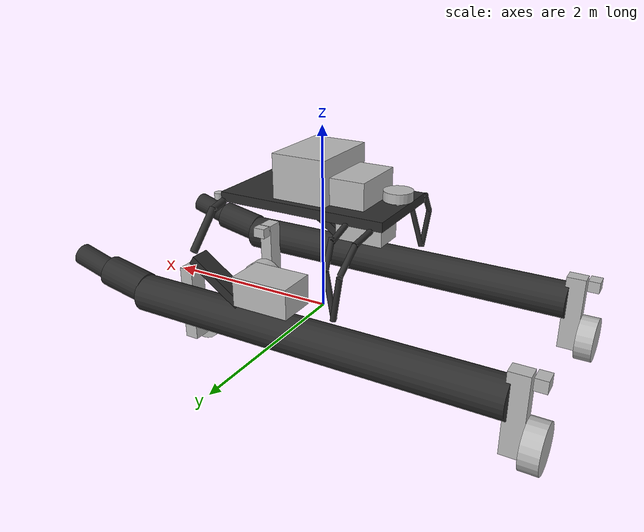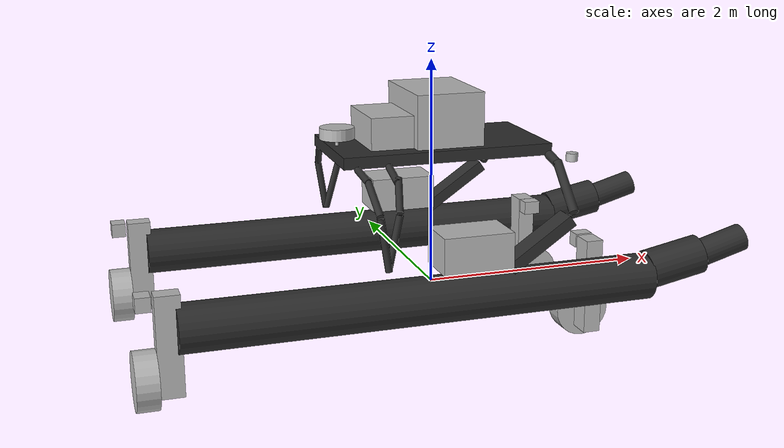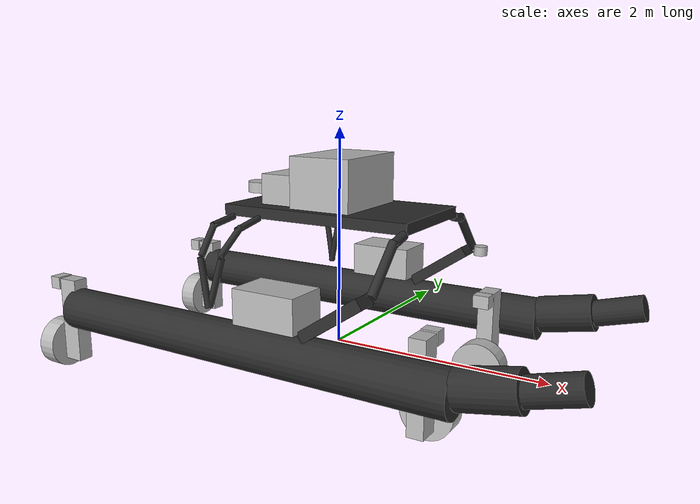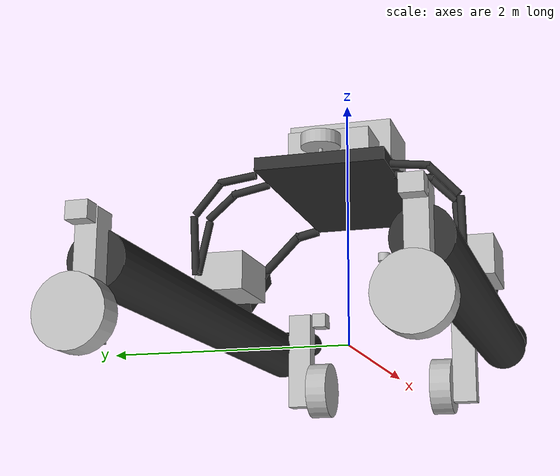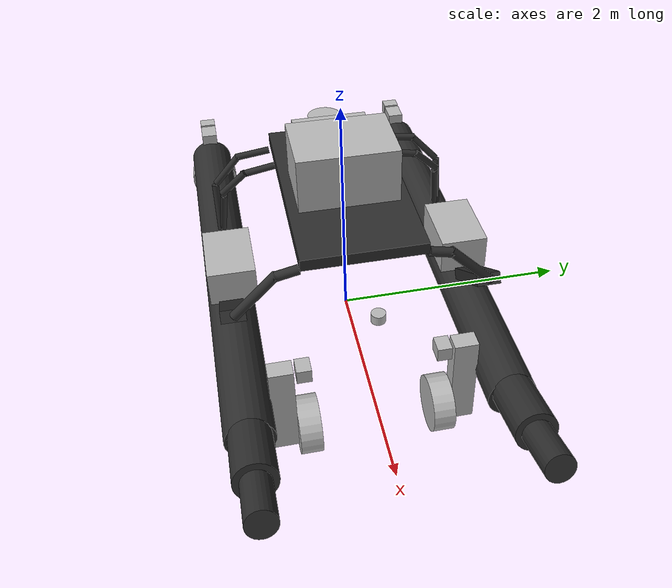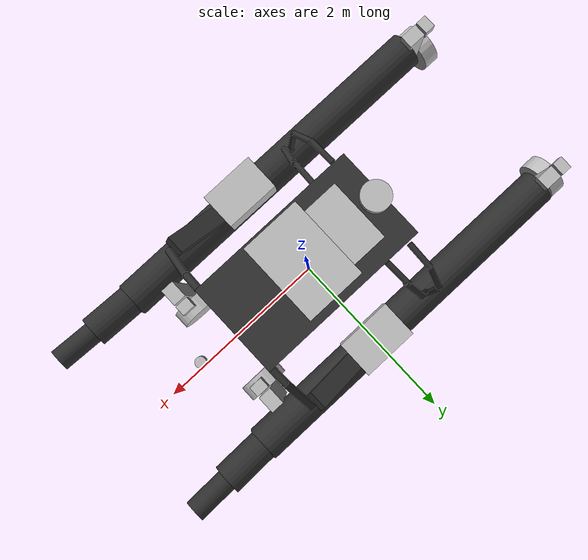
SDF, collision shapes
<?xml version="1.0" ?>
<!-- Basic WAM-V with gazebo plugins for dynamics -->
<sdf version='1.6'>
<model name="wamv_v1">

    <link name="base_link">
        <visual name="base_visual">
          <geometry>
            <mesh>
                <uri>models://wamv_v1/meshes/WAM-V-Base/mesh/WAM-V-Base.stl</uri>
            </mesh>
          </geometry>
          <material>
            <ambient>0.175 0.175 0.175 1.0</ambient>
            <diffuse>0.175 0.175 0.175 1.0</diffuse>
            <specular>0.0 0.0 0.0 1.0</specular>  <!-- Black specular -->
            <shininess>50.0</shininess>
        </material>
        </visual>
        <inertial>
          <mass>180.0</mass>
          <inertia>
            <ixx>120.0</ixx>
            <ixy>0.0</ixy>
            <ixz>0.0</ixz>
            <iyy>393.0</iyy>
            <iyz>0.0</iyz>
            <izz>446.0</izz>
          </inertia>
        </inertial>
        <!-- Main float -->
        <collision name="left_float">
            <pose>-0.4 1.03 0.2 0 1.57 0</pose>
            <geometry>
                <cylinder>
                    <length>4</length>
                    <radius>0.2</radius>
                </cylinder>
            </geometry>
        </collision>
        <collision name="left_mid_float">
            <pose>1.85 1.03 0.3 0 1.38 0</pose>
            <geometry>
                <cylinder>
                    <length>0.5</length>
                    <radius>0.17</radius>
                </cylinder>
            </geometry>
        </collision>

        <collision name="left_front_float">
            <pose>2.3 1.03 0.4 0 1.3 0</pose>
            <geometry>
                <cylinder>
                    <length>0.45</length>
                    <radius>0.12</radius>
                </cylinder>
            </geometry>
        </collision>

        <!-- Front beam -->
        <collision name="front_left_beam_lower">
            <pose>0.9 0.85 1 0.78 0 0</pose>
            <geometry>
                <cylinder>
                    <length>0.5</length>
                    <radius>0.04</radius>
                </cylinder>
            </geometry>
        </collision>

        <collision name="front_left_beam_upper">
            <pose>0.9 0.6 1.18 1.35 0 0</pose>
            <geometry>
                <cylinder>
                    <length>0.2</length>
                    <radius>0.04</radius>
                </cylinder>
            </geometry>
        </collision>

        <!-- Mid beam -->
        <collision name="mid_left_beam_lower">
            <pose>-0.65 0.99 0.7 0.1 0.25 0</pose>
            <geometry>
                <cylinder>
                    <length>0.45</length>
                    <radius>0.03</radius>
                </cylinder>
            </geometry>
        </collision>

        <collision name="mid_left_beam_medium">
            <pose>-0.57 0.87 1.05 0.75 0.25 0</pose>
            <geometry>
                <cylinder>
                    <length>0.32</length>
                    <radius>0.03</radius>
                </cylinder>
            </geometry>
        </collision>

        <collision name="mid_left_beam_upper">
            <pose>-0.55 0.65 1.17 1.35 0.25 0</pose>
            <geometry>
                <cylinder>
                    <length>0.3</length>
                    <radius>0.03</radius>
                </cylinder>
            </geometry>
        </collision>

        <!-- Rear beam -->
        <collision name="rear_left_beam_lower">
            <pose>-0.74 1.03 0.7 0 -0.15 0</pose>
            <geometry>
                <cylinder>
                    <length>0.45</length>
                    <radius>0.03</radius>
                </cylinder>
            </geometry>
        </collision>

        <collision name="rear_left_beam_medium">
            <pose>-0.79 0.91 1.05 0.75 -0.15 0</pose>
            <geometry>
                <cylinder>
                    <length>0.32</length>
                    <radius>0.03</radius>
                </cylinder>
            </geometry>
        </collision>

        <collision name="rear_left_beam_upper">
            <pose>-0.81 0.67 1.18 1.45 -0.15 0</pose>
            <geometry>
                <cylinder>
                    <length>0.3</length>
                    <radius>0.03</radius>
                </cylinder>
            </geometry>
        </collision>

        <!-- Joint -->
        <collision name="left_joint">
            <pose>0.58 1.03 0.6 0 -0.6 0</pose>
            <geometry>
                <box>
                    <size>0.65 0.2 0.1</size>
                </box>
            </geometry>
        </collision>

        <!-- Main float -->
        <collision name="right_float">
            <pose>-0.4 -1.03 0.2 0 1.57 0</pose>
            <geometry>
                <cylinder>
                    <length>4</length>
                    <radius>0.2</radius>
                </cylinder>
            </geometry>
        </collision>

        <collision name="right_mid_float">
            <pose>1.85 -1.03 0.3 0 1.38 0</pose>
            <geometry>
                <cylinder>
                    <length>0.5</length>
                    <radius>0.17</radius>
                </cylinder>
            </geometry>
        </collision>

        <collision name="right_front_float">
            <pose>2.3 -1.03 0.4 0 1.3 0</pose>
            <geometry>
                <cylinder>
                    <length>0.45</length>
                    <radius>0.12</radius>
                </cylinder>
            </geometry>
        </collision>

        <!-- Front beam -->
        <collision name="front_right_beam_lower">
            <pose>0.9 -0.85 1 -0.78 0 0</pose>
            <geometry>
                <cylinder>
                    <length>0.5</length>
                    <radius>0.04</radius>
                </cylinder>
            </geometry>
        </collision>

        <collision name="front_right_beam_upper">
            <pose>0.9 -0.6 1.18 -1.35 0 0</pose>
            <geometry>
                <cylinder>
                    <length>0.2</length>
                    <radius>0.04</radius>
                </cylinder>
            </geometry>
        </collision>

        <!-- Mid beam -->
        <collision name="mid_right_beam_lower">
            <pose>-0.65 -0.99 0.7 -0.1 0.25 0</pose>
            <geometry>
                <cylinder>
                    <length>0.45</length>
                    <radius>0.03</radius>
                </cylinder>
            </geometry>
        </collision>

        <collision name="mid_right_beam_medium">
            <pose>-0.57 -0.87 1.05 -0.75 0.25 0</pose>
            <geometry>
                <cylinder>
                    <length>0.32</length>
                    <radius>0.03</radius>
                </cylinder>
            </geometry>
        </collision>

        <collision name="mid_right_beam_upper">
            <pose>-0.55 -0.65 1.17 -1.35 0.25 0</pose>
            <geometry>
                <cylinder>
                    <length>0.3</length>
                    <radius>0.03</radius>
                </cylinder>
            </geometry>
        </collision>

        <!-- Rear beam -->
        <collision name="rear_right_beam_lower">
            <pose>-0.74 -1.03 0.7 0 -0.15 0</pose>
            <geometry>
                <cylinder>
                    <length>0.45</length>
                    <radius>0.03</radius>
                </cylinder>
            </geometry>
        </collision>

        <collision name="rear_right_beam_medium">
            <pose>-0.79 -0.91 1.05 -0.75 -0.15 0</pose>
            <geometry>
                <cylinder>
                    <length>0.32</length>
                    <radius>0.03</radius>
                </cylinder>
            </geometry>
        </collision>

        <collision name="rear_right_beam_upper">
            <pose>-0.81 -0.67 1.18 -1.45 -0.15 0</pose>
            <geometry>
                <cylinder>
                    <length>0.3</length>
                    <radius>0.03</radius>
                </cylinder>
            </geometry>
        </collision>

        <!-- Joint -->
        <collision name="right_joint">
            <pose>0.58 -1.03 0.6 0 -0.6 0</pose>
            <geometry>
                <box>
                    <size>0.65 0.2 0.1</size>
                </box>
            </geometry>
        </collision>

        <!-- Top base -->
        <collision name="top_base">
            <pose>0 -0 1.25 0 0 0</pose>
            <geometry>
                <box>
                    <size>1.85 1 0.1</size>
                </box>
            </geometry>
        </collision>
      </link>

    <link name="cpu_cases_link">
        <pose>-0.15 0 1.53 0 0 0</pose>
        <visual name="cpu_cases_visual">
            <pose>0.073 0 -1.53 0 0 0</pose>
            <geometry>
                <mesh>
                    <uri>models://wamv_v1/meshes/cpu_cases/mesh/cpu_cases.dae</uri>
                </mesh>
            </geometry>
        </visual>
        <collision name="cpu_case_1_collision">
            <pose>0.185 0 0 0 0 0</pose>
            <geometry>
                <box>
                    <size>0.595 0.83 0.47</size>
                </box>
            </geometry>
        </collision>
        <collision name="cpu_case_2_collision">
            <pose>-0.3 0 -0.092 0 0 0</pose>
            <geometry>
                <box>
                    <size>0.375 0.64 0.28</size>
                </box>
            </geometry>
        </collision>
        <inertial>
            <mass>20</mass>
            <inertia>
                <ixx>1.51633333333333</ixx>
                <ixy>0</ixy>
                <ixz>0</ixz>
                <iyy>1.93633333333333</iyy>
                <iyz>0</iyz>
                <izz>2.71633333333333</izz>
            </inertia>
        </inertial>
    </link>

    <joint name="chasis_cpu_cases_joint" type="fixed">
        <pose>-0.15 0 1.53 0 0 0</pose>
        <parent>base_link</parent>
        <child>cpu_cases_link</child>
    </joint>

    <!-- GPS Sensor -->
    <link name="gps_wamv_link">
        <pose>-0.85 0 1.3 0 0 0</pose>
        <visual name="gps_wamv_visual">
        <geometry>
            <mesh>
            <uri>/models://wamv_v1/meshes/gps/mesh/gps.dae</uri>
            </mesh>
        </geometry>
        </visual>
        <collision name="gps_wamv_collision_base">
        <pose>0 0 0.025 0 0 0</pose>
        <geometry>
            <cylinder>
            <length>0.05</length>
            <radius>0.015</radius>
            </cylinder>
        </geometry>
        </collision>
        <collision name="gps_wamv_collision_antenna">
        <pose>0 0 0.11 0 0 0</pose>
        <geometry>
            <cylinder>
            <length>0.1</length>
            <radius>0.15</radius>
            </cylinder>
        </geometry>
        </collision>
        <inertial>
        <mass>1</mass>
        <inertia>
            <ixx>0.006458</ixx>
            <ixy>0.0</ixy>
            <ixz>0.0</ixz>
            <iyy>0.006458</iyy>
            <iyz>0.0</iyz>
            <izz>0.01125</izz>
        </inertia>
        </inertial>
    </link>
    <!-- IMU Sensor -->
    <link name="imu_link">
        <pose>0.3 -0.2 1.3 0 0 0</pose>
        <visual name="imu_visual">
        <geometry>
            <box>
            <size>0.05 0.025 0.005</size>
            </box>
        </geometry>
        <material>
            <ambient>1.0 0.0 0.0 1.0</ambient>
            <diffuse>1.0 0.0 0.0 1.0</diffuse>
            <specular>1.0 0.0 0.0 1.0</specular>
        </material>
        </visual>
        <inertial>
            <mass>0.1</mass>
            <inertia>
                <ixx>0.0001</ixx>
                <ixy>0.0</ixy>
                <ixz>0.0</ixz>
                <iyy>0.0001</iyy>
                <iyz>0.0</iyz>
                <izz>0.0001</izz>
            </inertia>
        </inertial>
        <sensor name="imu_sensor" type="imu">
            <pose>0 0 0 0 0 0</pose>
            <always_on>1</always_on>
            <update_rate>1000.0</update_rate>
        </sensor>
    </link>

    <!-- Joint Definition -->
    <joint name="imu_joint" type="fixed">
        <axis>
        <xyz>0 0 1</xyz>
        <limit>
            <effort>1000.0</effort>
            <lower>0.0</lower>
            <upper>0.0</upper>
            <velocity>0.0</velocity>
        </limit>
        </axis>
        <pose>0.3 -0.2 1.3 0 0 0</pose>
        <parent>base_link</parent>
        <child>imu_link</child>
    </joint>

    <!-- 3D LiDAR Sensor -->
    <link name="lidar_wamv_link">
        <pose>1.36 0.0 1.04 0 0 0</pose>
        <visual name="lidar_wamv_visual">
        <pose>0 0 -0.035 0 0 0</pose>
        <geometry>
            <mesh>
            <uri>models://wamv_v1/meshes/3d_lidar/mesh/3d_lidar.dae</uri>
            </mesh>
        </geometry>
        </visual>
        <collision name="lidar_wamv_collision">
        <geometry>
            <cylinder>
            <length>0.075</length>
            <radius>0.055</radius>
            </cylinder>
        </geometry>
        </collision>
        <inertial>
        <mass>1</mass>
        <inertia>
            <ixx>0.00109375</ixx>
            <ixy>0</ixy>
            <ixz>0</ixz>
            <iyy>0.00109375</iyy>
            <iyz>0</iyz>
            <izz>0.00125</izz>
        </inertia>
        </inertial>
    </link>
    <!-- Joint Definition -->
    <joint name="base_to_lidar_wamv_joint" type="fixed">
        <pose>1.38 0.0 1.12325 0 0 0</pose>
        <parent>base_link</parent>
        <child>lidar_wamv_link</child>
    </joint>

    <!-- Joint Definition -->
    <joint name="gps_wamv_joint" type="fixed">
        <axis>
        <xyz>0 0 1</xyz>
        <limit>
            <effort>1000.0</effort>
            <lower>0.0</lower>
            <upper>0.0</upper>
            <velocity>0.0</velocity>
        </limit>
        </axis>
        <pose>-0.85 0 1.3 0 0 0</pose>
        <parent>base_link</parent>
        <child>gps_wamv_link</child>
    </joint>

    <!-- GPS Link -->
    <link name="gps_link">
        <pose>0 0 0 0 0 0</pose>
        <visual name="mavlink_wamv_visual">
        <geometry>
            <box>
            <size>0.0005 0.00025 0.005</size>
            </box>
        </geometry>
        </visual>
        <inertial>
            <mass>1.0</mass>
            <inertia>
                <ixx>0.01</ixx>
                <ixy>0.0</ixy>
                <ixz>0.0</ixz>
                <iyy>0.01</iyy>
                <iyz>0.0</iyz>
                <izz>0.02</izz>
            </inertia>
        </inertial>
    </link>

    <joint name="gps_joint" type="revolute">
        <parent>base_link</parent>
        <child>gps_link</child>
        <axis>
        <xyz>0 0 1</xyz>
            <limit>
                <effort>10</effort>
                <lower>-3.141592653589793</lower>
                <upper>3.141592653589793</upper>
                <velocity>0.01</velocity>
            </limit>
        </axis>
        <pose>0 0 0 0 0 0</pose>
    </joint>

    <!-- left_engine_link -->
    <link name="left_engine_link">
        <!-- Visual element for the engine -->
        <pose>-2.3 1.027135 0.318237 0 0 0</pose>
        <visual name="left_engine_visual">
          <geometry>
            <mesh>
              <uri>models://wamv_v1/meshes/engine/mesh/engine.dae</uri>
            </mesh>
          </geometry>
        </visual>

        <!-- Collision elements for the engine -->
        <collision name="left_engine_vertical_axis_collision">
          <pose>-0.16 0 -0.24 0 0 0</pose>  <!-- xyz and rpy combined into pose -->
          <geometry>
            <box>
              <size>0.2 0.15 0.83</size>
            </box>
          </geometry>
        </collision>

        <collision name="left_engine_rear_end_collision">
          <pose>-0.34 0 0.12 0 0 0</pose>  <!-- xyz and rpy combined into pose -->
          <geometry>
            <box>
              <size>0.12 0.15 0.12</size>
            </box>
          </geometry>
        </collision>

        <!-- Inertial properties of the engine link -->
        <inertial>
          <mass>15</mass>
          <inertia>
            <ixx>0.889245</ixx>
            <ixy>0.0</ixy>
            <ixz>0.0</ixz>
            <iyy>0.911125</iyy>
            <iyz>0.0</iyz>
            <izz>0.078125</izz>
          </inertia>
        </inertial>
      </link>

    <!-- Left Propeller Link -->
    <link name="left_propeller_link">
        <pose relative_to='left_engine_link'>-0.27 0 -0.51 0 0 0</pose>
        <visual name="left_propeller_visual">
        <geometry>
            <mesh>
            <uri>models://wamv_v1/meshes/propeller/mesh/propeller.dae</uri>
            </mesh>
        </geometry>
        </visual>
        <collision name="left_propeller_collision">
        <pose>-0.08 0 0 0 1.57 0</pose>
        <geometry>
            <cylinder>
            <length>0.18</length>
            <radius>0.24</radius>
            </cylinder>
        </geometry>
        </collision>
        <inertial>
        <mass>0.5</mass>
        <inertia>
            <ixx>0.008545</ixx>
            <ixy>0.0</ixy>
            <ixz>0.0</ixz>
            <iyy>0.008545</iyy>
            <iyz>0.0</iyz>
            <izz>0.0144</izz>
        </inertia>
        </inertial>
    </link>

    <!-- Left Chasis to Engine Joint -->
    <joint name="left_chasis_engine_joint" type="fixed">
        <axis>
        <xyz>0 0 1</xyz>
        </axis>
        <parent>base_link</parent>
        <child>left_engine_link</child>
    </joint>

    <!-- Left Engine to Propeller Joint -->
    <joint name="left_engine_propeller_joint" type="revolute">
        <axis>
        <xyz>1 0 0</xyz>
        <limit>
            <effort>100</effort>
            <velocity>100</velocity>
        </limit>
        </axis>
        <parent>left_engine_link</parent>
        <child>left_propeller_link</child>
        <dynamics>
            <damping>0.05</damping>
            <friction>0.05</friction>
        </dynamics>
    </joint>

    <!-- Right Engine Link -->
    <link name="right_engine_link">
        <pose>-2.3 -1.027135 0.318237 0 0 0</pose>
        <visual name="right_engine_visual">
        <geometry>
            <mesh>
            <uri>models://wamv_v1/meshes/engine/mesh/engine.dae</uri>
            </mesh>
        </geometry>
        </visual>
        <collision name="right_engine_vertical_axis_collision">
        <pose>-0.16 0 -0.24 0 0 0</pose>
        <geometry>
            <box>
            <size>0.2 0.15 0.83</size>
            </box>
        </geometry>
        </collision>
        <collision name="right_engine_rear_end_collision">
        <pose>-0.34 0 0.12 0 0 0</pose>
        <geometry>
            <box>
            <size>0.12 0.15 0.12</size>
            </box>
        </geometry>
        </collision>
        <inertial>
        <mass>15</mass>
        <inertia>
            <ixx>0.889245</ixx>
            <ixy>0.0</ixy>
            <ixz>0.0</ixz>
            <iyy>0.911125</iyy>
            <iyz>0.0</iyz>
            <izz>0.078125</izz>
        </inertia>
        </inertial>
    </link>

    <!-- Right Propeller Link -->
    <link name="right_propeller_link">
        <pose relative_to='right_engine_link'>-0.27 0 -0.51 0 0 0</pose>
        <visual name="right_propeller_visual">
        <geometry>
            <mesh>
            <uri>models://wamv_v1/meshes/propeller/mesh/propeller.dae</uri>
            </mesh>
        </geometry>
        </visual>
        <collision name="right_propeller_collision">
        <pose>-0.08 0 0 0 1.57 0</pose>
        <geometry>
            <cylinder>
            <length>0.18</length>
            <radius>0.24</radius>
            </cylinder>
        </geometry>
        </collision>
        <inertial>
        <mass>0.5</mass>
        <inertia>
            <ixx>0.008545</ixx>
            <ixy>0.0</ixy>
            <ixz>0.0</ixz>
            <iyy>0.008545</iyy>
            <iyz>0.0</iyz>
            <izz>0.0144</izz>
        </inertia>
        </inertial>
    </link>

    <!-- Right Chasis to Engine Joint -->
    <joint name="right_chasis_engine_joint" type="fixed">
        <axis>
        <xyz>0 0 1</xyz>
        </axis>
        <parent>base_link</parent>
        <child>right_engine_link</child>
    </joint>

    <!-- Right Engine to Propeller Joint -->
    <joint name="right_engine_propeller_joint" type="revolute">
        <axis>
        <xyz>1 0 0</xyz>
        <limit>
            <effort>100</effort>
            <velocity>100</velocity>
        </limit>
        </axis>
        <parent>right_engine_link</parent>
        <child>right_propeller_link</child>
        <dynamics>
            <damping>0.05</damping>
            <friction>0.05</friction>
        </dynamics>
    </joint>

    <!-- Left Lateral Engine Link -->
    <link name="left_front_engine_link">
        <pose>1.20 0.90 0.318237 0.0 0.0 1.5707</pose>
        <visual name="left_front_engine_visual">
        <geometry>
            <mesh>
            <uri>models://wamv_v1/meshes/engine/mesh/engine.dae</uri>
            </mesh>
        </geometry>
        </visual>
        <collision name="left_front_engine_vertical_axis_collision">
        <pose>-0.16 0 -0.24 0 0 0</pose>
        <geometry>
            <box>
            <size>0.2 0.15 0.83</size>
            </box>
        </geometry>
        </collision>
        <collision name="left_front_engine_rear_end_collision">
        <pose>-0.34 0 0.12 0 0 0</pose>
        <geometry>
            <box>
            <size>0.12 0.15 0.12</size>
            </box>
        </geometry>
        </collision>
        <inertial>
        <mass>15</mass>
        <inertia>
            <ixx>0.889245</ixx>
            <ixy>0.0</ixy>
            <ixz>0.0</ixz>
            <iyy>0.911125</iyy>
            <iyz>0.0</iyz>
            <izz>0.078125</izz>
        </inertia>
        </inertial>
    </link>

    <link name="left_front_propeller_link">
        <pose relative_to='left_front_engine_link'>-0.27 0 -0.51 0 0 0</pose>
        <visual name="left_front_propeller_visual">
            <geometry>
                <mesh>
                    <uri>models://wamv_v1/meshes/propeller/mesh/propeller.dae</uri>
                </mesh>
            </geometry>
        </visual>
        <collision name="left_front_propeller_collision">
            <pose>-0.08 0 0 0 1.57 0</pose>
            <geometry>
                <cylinder>
                    <length>0.18</length>
                    <radius>0.24</radius>
                </cylinder>
            </geometry>
        </collision>
        <inertial>
            <mass>0.5</mass>
            <inertia>
                <ixx>0.008545</ixx>
                <ixy>0.0</ixy>
                <ixz>0.0</ixz>
                <iyy>0.008545</iyy>
                <iyz>0.0</iyz>
                <izz>0.0144</izz>
            </inertia>
        </inertial>
    </link>

    <joint name="left_front_chasis_engine_joint" type="fixed">
        <axis>
            <xyz>0 0 1</xyz>
        </axis>
        <parent>base_link</parent>
        <child>left_front_engine_link</child>
    </joint>

    <joint name="left_front_engine_propeller_joint" type="revolute">
        <axis>
            <xyz>1 0 0</xyz>
            <limit>
                <effort>100</effort>
                <velocity>100</velocity>
            </limit>
        </axis>
        <parent>left_front_engine_link</parent>
        <child>left_front_propeller_link</child>
        <dynamics>
            <damping>0.05</damping>
            <friction>0.05</friction>
        </dynamics>
    </joint>

    <link name="right_front_engine_link">
        <pose>1.20 -0.90 0.318237 0.0 0.0 -1.5707</pose>
        <visual name="right_front_engine_visual">
            <geometry>
                <mesh>
                    <uri>models://wamv_v1/meshes/engine/mesh/engine.dae</uri>
                </mesh>
            </geometry>
        </visual>
        <collision name="right_front_engine_vertical_axis_collision">
            <pose>-0.16 0 -0.24 0 0 0</pose>
            <geometry>
                <box>
                    <size>0.2 0.15 0.83</size>
                </box>
            </geometry>
        </collision>
        <collision name="right_front_engine_rear_end_collision">
            <pose>-0.34 0 0.12 0 0 0</pose>
            <geometry>
                <box>
                    <size>0.12 0.15 0.12</size>
                </box>
            </geometry>
        </collision>
        <inertial>
            <mass>15</mass>
            <inertia>
                <ixx>0.889245</ixx>
                <ixy>0.0</ixy>
                <ixz>0.0</ixz>
                <iyy>0.911125</iyy>
                <iyz>0.0</iyz>
                <izz>0.078125</izz>
            </inertia>
        </inertial>
    </link>

    <link name="right_front_propeller_link">
        <pose relative_to='right_front_engine_link'>-0.27 0 -0.51 0 0 0</pose>
        <visual name="right_front_propeller_visual">
            <geometry>
                <mesh>
                    <uri>models://wamv_v1/meshes/propeller/mesh/propeller.dae</uri>
                </mesh>
            </geometry>
        </visual>
        <collision name="right_front_propeller_collision">
            <pose>-0.08 0 0 0 1.57 0</pose>
            <geometry>
                <cylinder>
                    <length>0.18</length>
                    <radius>0.24</radius>
                </cylinder>
            </geometry>
        </collision>
        <inertial>
            <mass>0.5</mass>
            <inertia>
                <ixx>0.008545</ixx>
                <ixy>0.0</ixy>
                <ixz>0.0</ixz>
                <iyy>0.008545</iyy>
                <iyz>0.0</iyz>
                <izz>0.0144</izz>
            </inertia>
        </inertial>
    </link>

    <joint name="right_front_chasis_engine_joint" type="fixed">
        <axis>
            <xyz>0 0 1</xyz>
        </axis>
        <parent>base_link</parent>
        <child>right_front_engine_link</child>
    </joint>

    <joint name="right_front_engine_propeller_joint" type="revolute">
        <axis>
            <xyz>1 0 0</xyz>
            <limit>
                <effort>100</effort>
                <velocity>100</velocity>
            </limit>
        </axis>
        <parent>right_front_engine_link</parent>
        <child>right_front_propeller_link</child>
        <dynamics>
            <damping>0.05</damping>
            <friction>0.05</friction>
        </dynamics>
    </joint>

  <link name="left_battery_link">
    <pose>0 1 0.45 0 0 0</pose>
    <visual name="left_battery_visual">
        <pose>0 -1 -0.45 0 0 0</pose>
      <geometry>
        <mesh>
            <uri>models://wamv_v1/meshes/battery.dae</uri>
        </mesh>
      </geometry>
    </visual>
    <collision name="left_battery_collision">
      <pose>0 0 0.15 0 0 0</pose>
      <geometry>
        <box><size>0.6 0.4 0.31</size></box>
      </geometry>
    </collision>
    <inertial>
      <pose>0 0 0.15 0 0 0</pose>
      <mass>23.5</mass>
      <inertia>
        <ixx>0.5015291666666667</ixx>
        <ixy>0</ixy>
        <ixz>0</ixz>
        <iyy>0.8931958333333333</iyy>
        <iyz>0</iyz>
        <izz>1.0183333333333333</izz>
      </inertia>
    </inertial>
  </link>
  <joint name="left_chasis_battery_joint" type="fixed">
    <pose>0 1 0.45 0 0 0</pose>
    <parent>base_link</parent>
    <child>left_battery_link</child>
  </joint>
  <link name="right_battery_link">
    <pose>0 -1 0.45 0 0 0</pose>
    <visual name="right_battery_visual">
        <pose>0 -1 -0.45 0 0 0</pose>
      <geometry>
        <mesh>
            <uri>models://wamv_v1/meshes/battery.dae</uri>
        </mesh>
      </geometry>
    </visual>
    <collision name="right_battery_collision">
      <pose>0 0 0.15 0 0 0</pose>
      <geometry>
        <box><size>0.6 0.4 0.31</size></box>
      </geometry>
    </collision>
    <inertial>
      <pose>0 0 0.15 0 0 0</pose>
      <mass>23.5</mass>
      <inertia>
        <ixx>0.5015291666666667</ixx>
        <ixy>0</ixy>
        <ixz>0</ixz>
        <iyy>0.8931958333333333</iyy>
        <iyz>0</iyz>
        <izz>1.0183333333333333</izz>
      </inertia>
    </inertial>
  </link>
  <joint name="right_chasis_battery_joint" type="fixed">
    <pose>0 -1 0.45 0 0 0</pose>
    <parent>base_link</parent>
    <child>right_battery_link</child>
  </joint>

  <!-- Additional links and joints -->

    <!-- hydrodynamics plugin -->
    <plugin name="gz::sim::systems::Hydrodynamics"
        filename="gz-waves1-hydrodynamics-system">
        <enable>wamv_v1::base_link</enable>
        <hydrodynamics>
          <damping_on>1</damping_on>
          <viscous_drag_on>1</viscous_drag_on>
          <pressure_drag_on>1</pressure_drag_on>
        </hydrodynamics>
    </plugin>

    <plugin
        filename="gz-sim-thruster-system"
        name="gz::sim::systems::Thruster">
        <topic>//joint/left/thruster/cmd_thrust</topic>
        <joint_name>left_engine_propeller_joint</joint_name>
        <thrust_coefficient>0.004422</thrust_coefficient>
        <fluid_density>1000</fluid_density>
        <propeller_diameter>0.2</propeller_diameter>
        <velocity_control>true</velocity_control>
        <max_thrust_cmd>1141.83673</max_thrust_cmd>
    </plugin>

    <plugin
        filename="gz-sim-thruster-system"
        name="gz::sim::systems::Thruster">
        <topic>//joint/left_front/thruster/cmd_thrust</topic>
        <joint_name>left_front_engine_propeller_joint</joint_name>
        <thrust_coefficient>0.004422</thrust_coefficient>
        <fluid_density>1000</fluid_density>
        <propeller_diameter>0.2</propeller_diameter>
        <velocity_control>true</velocity_control>
        <max_thrust_cmd>1141.83673</max_thrust_cmd>
    </plugin>

    <plugin
        filename="gz-sim-thruster-system"
        name="gz::sim::systems::Thruster">
        <topic>//joint/right/thruster/cmd_thrust</topic>
        <joint_name>right_engine_propeller_joint</joint_name>
        <thrust_coefficient>0.004422</thrust_coefficient>
        <fluid_density>1000</fluid_density>
        <propeller_diameter>0.2</propeller_diameter>
        <velocity_control>true</velocity_control>
        <max_thrust_cmd>1141.83673</max_thrust_cmd>
    </plugin>

    <plugin
        filename="gz-sim-thruster-system"
        name="gz::sim::systems::Thruster">
        <topic>//joint/right_front/thruster/cmd_thrust</topic>
        <joint_name>right_front_engine_propeller_joint</joint_name>
        <thrust_coefficient>0.004422</thrust_coefficient>
        <fluid_density>1000</fluid_density>
        <propeller_diameter>0.2</propeller_diameter>
        <velocity_control>true</velocity_control>
        <max_thrust_cmd>1141.83673</max_thrust_cmd>
    </plugin>

    <!-- odometry publisher -->
    <plugin name="gz::sim::systems::OdometryPublisher"
        filename="gz-sim-odometry-publisher-system">
        <odom_frame>odom</odom_frame>
        <robot_base_frame>base_link</robot_base_frame>
        <dimension>3</dimension>
    </plugin>

</model>
</sdf>
